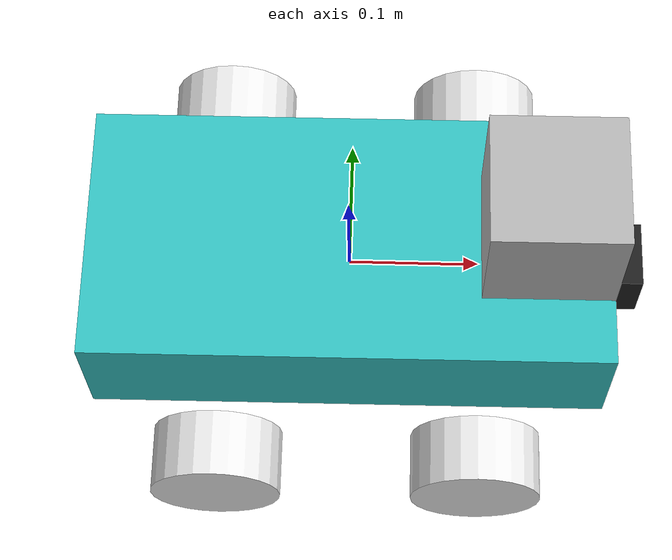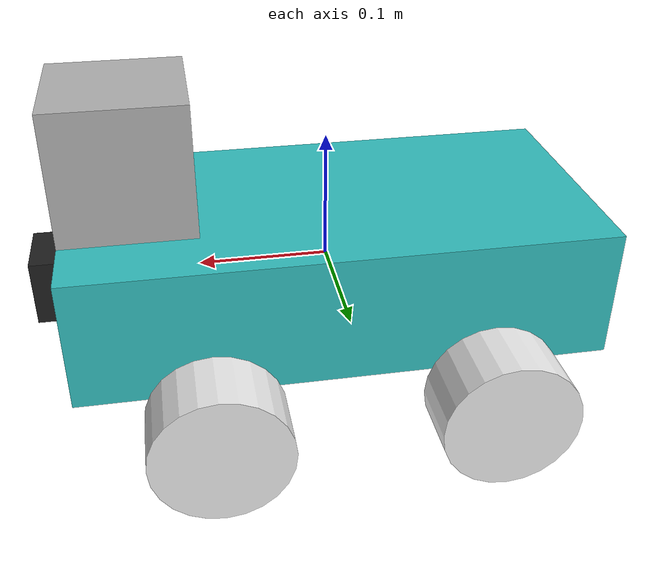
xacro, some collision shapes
<?xml version='1.0'?>

<robot name="my_robot" xmlns:xacro="http://www.ros.org/wiki/xacro">
  <xacro:include filename="$(find my_robot)/urdf/my_robot.gazebo" />
  <link name="robot_footprint"></link>

  <joint name="robot_footprint_joint" type="fixed">
    <origin xyz="0 0 0" rpy="0 0 0" />
    <parent link="robot_footprint"/>
    <child link="chassis" />
  </joint>

  <link name='chassis'>
    <pose>0 0 0.1 0 0 0</pose>

    <inertial>
      <mass value="15.0"/>
      <origin xyz="0.0 0 0" rpy=" 0 0 0"/>
      <inertia
          ixx="0.1" ixy="0" ixz="0"
          iyy="0.1" iyz="0"
          izz="0.1"
      />
    </inertial>

    <collision name='collision'>
      <origin xyz="0 0 0" rpy=" 0 0 0"/>
      <geometry>
        <box size=".4 .2 .1"/>
      </geometry>
    </collision>

    <visual name='chassis_visual'>
      <origin xyz="0 0 0" rpy=" 0 0 0"/>
      <geometry>
        <box size=".4 .2 .1"/>
      </geometry>
    </visual>

    <collision name='back_caster_collision'>
      <origin xyz="-0.15 0 -0.05" rpy=" 0 0 0"/>
      <geometry>
        <sphere radius="0.0499"/>
      </geometry>
    </collision>

    <visual name='back_caster_visual'>
      <origin xyz="-0.15 0 -0.05" rpy=" 0 0 0"/>
      <geometry>
        <sphere radius="0.05"/>
      </geometry>
    </visual>

    <collision name='front_caster_collision'>
      <origin xyz="0.15 0 -0.05" rpy=" 0 0 0"/>
      <geometry>
        <sphere radius="0.0499"/>
      </geometry>
    </collision>

    <visual name='front_caster_visual'>
      <origin xyz="0.15 0 -0.05" rpy=" 0 0 0"/>
      <geometry>
        <sphere radius="0.05"/>
      </geometry>
    </visual>

  </link>

<!--left wheel -->
  <link name='left_wheel'>

    <inertial>
      <mass value="5.0"/>
      <origin xyz="0.0 0 0" rpy=" 0 1.5707 1.5707"/>
      <inertia
          ixx="0.1" ixy="0" ixz="0"
          iyy="0.1" iyz="0"
          izz="0.1"
      />
    </inertial>

    <visual name='left_wheel_visual'>
      <origin xyz="0 0 0" rpy=" 0 1.5707 1.5707"/>
      <geometry>
        <cylinder length="0.05" radius="0.05"/>
      </geometry>
    </visual>

    <collision name='left_wheel_collision'>
      <origin xyz="0 0 0" rpy=" 0 1.5707 1.5707"/>
      <geometry>
        <cylinder length="0.05" radius="0.05"/>
      </geometry>
    </collision>

  </link>

  <joint type="continuous" name="left_wheel_hinge">
    <origin xyz="0.1 0.15 -0.05" rpy="0 0 0"/>
    <child link="left_wheel"/>
    <parent link="chassis"/>
    <axis xyz="0 1 0" rpy="0 0 0"/>
    <limit effort="10000" velocity="1000"/>
    <dynamics damping="1.0" friction="1.0"/>
  </joint>

<!--left back wheel -->
  <link name='left_wheel_2'>

    <inertial>
      <mass value="5.0"/>
      <origin xyz="0.0 0 0" rpy=" 0 1.5707 1.5707"/>
      <inertia
          ixx="0.1" ixy="0" ixz="0"
          iyy="0.1" iyz="0"
          izz="0.1"
      />
    </inertial>

    <visual name='left_wheel_2_visual'>
      <origin xyz="0 0 0" rpy=" 0 1.5707 1.5707"/>
      <geometry>
        <cylinder length="0.05" radius="0.05"/>
      </geometry>
    </visual>

    <collision name='left_wheel_2_collision'>
      <origin xyz="0 0 0" rpy=" 0 1.5707 1.5707"/>
      <geometry>
        <cylinder length="0.05" radius="0.05"/>
      </geometry>
    </collision>

  </link>

  <joint type="continuous" name="left_wheel_2_hinge">
    <origin xyz="-0.1 0.15 -0.05" rpy="0 0 0"/>
    <child link="left_wheel_2"/>
    <parent link="chassis"/>
    <axis xyz="0 1 0" rpy="0 0 0"/>
    <limit effort="10000" velocity="1000"/>
    <dynamics damping="1.0" friction="1.0"/>
  </joint>

<!--right wheel -->
  <link name='right_wheel'>

    <inertial>
      <mass value="5.0"/>
      <origin xyz="0.0 0 0" rpy=" 0 1.5707 1.5707"/>
      <inertia
          ixx="0.1" ixy="0" ixz="0"
          iyy="0.1" iyz="0"
          izz="0.1"
      />
    </inertial>

    <visual name='right_wheel_visual'>
      <origin xyz="0 0 0" rpy=" 0 1.5707 1.5707"/>
      <geometry>
        <cylinder length="0.05" radius="0.05"/>
      </geometry>
    </visual>

    <collision name='right_wheel_collision'>
      <origin xyz="0 0 0" rpy=" 0 1.5707 1.5707"/>
      <geometry>
        <cylinder length="0.05" radius="0.05"/>
      </geometry>
    </collision>

  </link>

  <joint type="continuous" name="right_wheel_hinge">
    <origin xyz="0.1 -0.15 -0.05" rpy="0 0 0"/>
    <child link="right_wheel"/>
    <parent link="chassis"/>
    <axis xyz="0 1 0" rpy="0 0 0"/>
    <limit effort="10000" velocity="1000"/>
    <dynamics damping="1.0" friction="1.0"/>
  </joint>

<!--right wheel back -->
  <link name='right_wheel_2'>

    <inertial>
      <mass value="5.0"/>
      <origin xyz="0.0 0 0" rpy=" 0 1.5707 1.5707"/>
      <inertia
          ixx="0.1" ixy="0" ixz="0"
          iyy="0.1" iyz="0"
          izz="0.1"
      />
    </inertial>

    <visual name='right_wheel_2_visual'>
      <origin xyz="0 0 0" rpy=" 0 1.5707 1.5707"/>
      <geometry>
        <cylinder length="0.05" radius="0.05"/>
      </geometry>
    </visual>

    <collision name='right_wheel_2_collision'>
      <origin xyz="0 0 0" rpy=" 0 1.5707 1.5707"/>
      <geometry>
        <cylinder length="0.05" radius="0.05"/>
      </geometry>
    </collision>

  </link>

  <joint type="continuous" name="right_wheel_2_hinge">
    <origin xyz="-0.1 -0.15 -0.05" rpy="0 0 0"/>
    <child link="right_wheel_2"/>
    <parent link="chassis"/>
    <axis xyz="0 1 0" rpy="0 0 0"/>
    <limit effort="10000" velocity="1000"/>
    <dynamics damping="1.0" friction="1.0"/>
  </joint>

<!--camera -->
  <link name='camera'>

    <inertial>
      <mass value="0.1"/>
      <origin xyz="0.0 0 0" rpy=" 0 0 0"/>
      <inertia
          ixx="1e-6" ixy="0" ixz="0"
          iyy="1e-6" iyz="0"
          izz="1e-6"
      />
    </inertial>

    <visual name='camera_visual'>
      <origin xyz="0.0 0 0" rpy=" 0 0 0"/>
      <geometry>
        <box size=".05 .05 .05"/>
      </geometry>
    </visual>

    <collision name='camera_collision'>
      <origin xyz="0.0 0 0" rpy=" 0 0 0"/>
      <geometry>
        <box size=".05 .05 .05"/>
      </geometry>
    </collision>

  </link>

  <joint type="fixed" name="camera_joint">
    <origin xyz="0.2 0 0" rpy="0 0 0"/>
    <child link="camera"/>
    <parent link="chassis"/>
    <axis xyz="0 1 0" rpy="0 0 0"/>
  </joint>

<!-- hokuyo sensor -->
  <link name='hokuyo'>

    <inertial>
      <mass value="1e-5"/>
      <origin xyz="0.0 0 0" rpy=" 0 0 0"/>
      <inertia
          ixx="1e-6" ixy="0" ixz="0"
          iyy="1e-6" iyz="0"
          izz="1e-6"
      />
    </inertial>

    <visual name='hokuyo_visual'>
      <origin xyz="0.0 0 0" rpy=" 0 0 0"/>
      <geometry>
        <mesh filename="package://my_robot/meshes/hokuyo.dae"/>
      </geometry>
    </visual>

    <collision name='hokuyo_collision'>
      <origin xyz="0.0 0 0" rpy=" 0 0 0"/>
      <geometry>
        <box size=".1 .1 .1"/>
      </geometry>
    </collision>

  </link>

  <joint type="fixed" name="hokuyo_joint">
    <origin xyz="0.15 0 0.1" rpy="0 0 0"/>
    <child link="hokuyo"/>
    <parent link="chassis"/>
    <axis xyz="0 1 0" rpy="0 0 0"/>
  </joint>
<!-- color -->
  <gazebo reference="left_wheel">
    <material>Gazebo/White</material>
  </gazebo>
  <gazebo reference="right_wheel">
    <material>Gazebo/White</material>
  </gazebo>
  <gazebo reference="left_wheel_2">
    <material>Gazebo/White</material>
  </gazebo>
  <gazebo reference="right_wheel_2">
    <material>Gazebo/White</material>
  </gazebo>
  <gazebo reference="chassis">
    <material>Gazebo/Turquoise</material>
  </gazebo>
  <gazebo reference="camera">
    <material>Gazebo/Black</material>
  </gazebo>
</robot>
